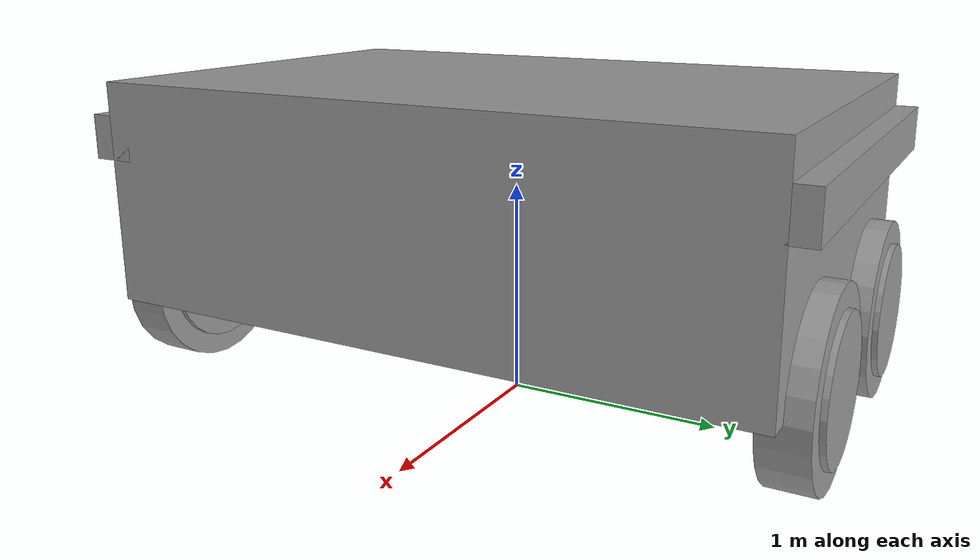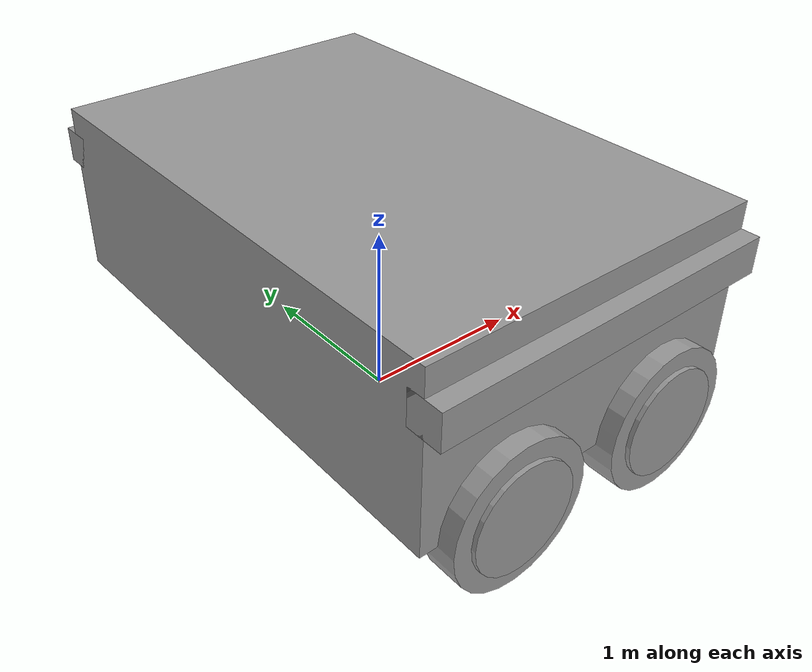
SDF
<?xml version='1.0'?>
<sdf version='1.6'>
  <model name='unit_box'>
    <link name='link'>
      <inertial>
        <mass>1</mass>
        <inertia>
          <ixx>0.166667</ixx>
          <ixy>0</ixy>
          <ixz>0</ixz>
          <iyy>0.166667</iyy>
          <iyz>0</iyz>
          <izz>0.166667</izz>
        </inertia>
        <pose frame=''>0 0 0 0 -0 0</pose>
      </inertial>
      <self_collide>0</self_collide>
      <enable_wind>0</enable_wind>
      <kinematic>0</kinematic>
      <pose frame=''>0 0 1 0 -0 0</pose>
      <gravity>1</gravity>
      <visual name='visual'>
        <geometry>
          <box>
            <size>2 3 1</size>
          </box>
        </geometry>
        <material>
          <script>
            <name>Gazebo/Grey</name>
            <uri>file://media/materials/scripts/gazebo.material</uri>
          </script>
          <shader type='pixel'>
            <normal_map>__default__</normal_map>
          </shader>
          <ambient>0.3 0.3 0.3 1</ambient>
          <diffuse>0.7 0.7 0.7 1</diffuse>
          <specular>0.01 0.01 0.01 1</specular>
          <emissive>0 0 0 1</emissive>
        </material>
        <pose frame=''>0 0 0 0 -0 0</pose>
        <transparency>0</transparency>
        <cast_shadows>1</cast_shadows>
      </visual>
      <collision name='collision'>
        <laser_retro>0</laser_retro>
        <max_contacts>10</max_contacts>
        <pose frame=''>0 0 0 0 -0 0</pose>
        <geometry>
          <box>
            <size>2 3 1</size>
          </box>
        </geometry>
        <surface>
          <friction>
            <ode>
              <mu>1</mu>
              <mu2>1</mu2>
              <fdir1>0 0 0</fdir1>
              <slip1>0</slip1>
              <slip2>0</slip2>
            </ode>
            <torsional>
              <coefficient>1</coefficient>
              <patch_radius>0</patch_radius>
              <surface_radius>0</surface_radius>
              <use_patch_radius>1</use_patch_radius>
              <ode>
                <slip>0</slip>
              </ode>
            </torsional>
          </friction>
          <bounce>
            <restitution_coefficient>0</restitution_coefficient>
            <threshold>1e+06</threshold>
          </bounce>
          <contact>
            <collide_without_contact>0</collide_without_contact>
            <collide_without_contact_bitmask>1</collide_without_contact_bitmask>
            <collide_bitmask>1</collide_bitmask>
            <ode>
              <soft_cfm>0</soft_cfm>
              <soft_erp>0.2</soft_erp>
              <kp>1e+13</kp>
              <kd>1</kd>
              <max_vel>0.01</max_vel>
              <min_depth>0</min_depth>
            </ode>
            <bullet>
              <split_impulse>1</split_impulse>
              <split_impulse_penetration_threshold>-0.01</split_impulse_penetration_threshold>
              <soft_cfm>0</soft_cfm>
              <soft_erp>0.2</soft_erp>
              <kp>1e+13</kp>
              <kd>1</kd>
            </bullet>
          </contact>
        </surface>
      </collision>
    </link>
    <link name='link_0'>
      <inertial>
        <mass>1</mass>
        <inertia>
          <ixx>0.166667</ixx>
          <ixy>0</ixy>
          <ixz>0</ixz>
          <iyy>0.166667</iyy>
          <iyz>0</iyz>
          <izz>0.166667</izz>
        </inertia>
        <pose frame=''>0 0 0 0 -0 0</pose>
      </inertial>
      <pose frame=''>0 1.5 1.25 0 -0 0</pose>
      <gravity>1</gravity>
      <self_collide>0</self_collide>
      <kinematic>0</kinematic>
      <enable_wind>0</enable_wind>
      <visual name='visual'>
        <pose frame=''>0 0 0 0 -0 0</pose>
        <geometry>
          <box>
            <size>2 0.2 0.2</size>
          </box>
        </geometry>
        <material>
          <lighting>1</lighting>
          <script>
            <uri>file://media/materials/scripts/gazebo.material</uri>
            <name>Gazebo/Grey</name>
          </script>
          <shader type='pixel'>
            <normal_map>__default__</normal_map>
          </shader>
          <ambient>0.3 0.3 0.3 1</ambient>
          <diffuse>0.7 0.7 0.7 1</diffuse>
          <specular>0.01 0.01 0.01 1</specular>
          <emissive>0 0 0 1</emissive>
        </material>
        <transparency>0</transparency>
        <cast_shadows>1</cast_shadows>
      </visual>
      <collision name='collision'>
        <laser_retro>0</laser_retro>
        <max_contacts>10</max_contacts>
        <pose frame=''>0 0 0 0 -0 0</pose>
        <geometry>
          <box>
            <size>2 0.2 0.2</size>
          </box>
        </geometry>
        <surface>
          <friction>
            <ode>
              <mu>1</mu>
              <mu2>1</mu2>
              <fdir1>0 0 0</fdir1>
              <slip1>0</slip1>
              <slip2>0</slip2>
            </ode>
            <torsional>
              <coefficient>1</coefficient>
              <patch_radius>0</patch_radius>
              <surface_radius>0</surface_radius>
              <use_patch_radius>1</use_patch_radius>
              <ode>
                <slip>0</slip>
              </ode>
            </torsional>
          </friction>
          <bounce>
            <restitution_coefficient>0</restitution_coefficient>
            <threshold>1e+06</threshold>
          </bounce>
          <contact>
            <collide_without_contact>0</collide_without_contact>
            <collide_without_contact_bitmask>1</collide_without_contact_bitmask>
            <collide_bitmask>1</collide_bitmask>
            <ode>
              <soft_cfm>0</soft_cfm>
              <soft_erp>0.2</soft_erp>
              <kp>1e+13</kp>
              <kd>1</kd>
              <max_vel>0.01</max_vel>
              <min_depth>0</min_depth>
            </ode>
            <bullet>
              <split_impulse>1</split_impulse>
              <split_impulse_penetration_threshold>-0.01</split_impulse_penetration_threshold>
              <soft_cfm>0</soft_cfm>
              <soft_erp>0.2</soft_erp>
              <kp>1e+13</kp>
              <kd>1</kd>
            </bullet>
          </contact>
        </surface>
      </collision>
    </link>
    <link name='link_0_clone'>
      <inertial>
        <mass>1</mass>
        <inertia>
          <ixx>0.166667</ixx>
          <ixy>0</ixy>
          <ixz>0</ixz>
          <iyy>0.166667</iyy>
          <iyz>0</iyz>
          <izz>0.166667</izz>
        </inertia>
        <pose frame=''>0 0 0 0 -0 0</pose>
      </inertial>
      <pose frame=''>-0 -1.5 1.25 -1e-05 -0 0</pose>
      <gravity>1</gravity>
      <self_collide>0</self_collide>
      <kinematic>0</kinematic>
      <enable_wind>0</enable_wind>
      <visual name='visual'>
        <pose frame=''>0 0 0 0 -0 0</pose>
        <geometry>
          <box>
            <size>2 0.2 0.2</size>
          </box>
        </geometry>
        <material>
          <lighting>1</lighting>
          <script>
            <uri>file://media/materials/scripts/gazebo.material</uri>
            <name>Gazebo/Grey</name>
          </script>
          <shader type='pixel'>
            <normal_map>__default__</normal_map>
          </shader>
          <ambient>0.3 0.3 0.3 1</ambient>
          <diffuse>0.7 0.7 0.7 1</diffuse>
          <specular>0.01 0.01 0.01 1</specular>
          <emissive>0 0 0 1</emissive>
        </material>
        <transparency>0</transparency>
        <cast_shadows>1</cast_shadows>
      </visual>
      <collision name='collision'>
        <laser_retro>0</laser_retro>
        <max_contacts>10</max_contacts>
        <pose frame=''>0 0 0 0 -0 0</pose>
        <geometry>
          <box>
            <size>2 0.2 0.2</size>
          </box>
        </geometry>
        <surface>
          <friction>
            <ode>
              <mu>1</mu>
              <mu2>1</mu2>
              <fdir1>0 0 0</fdir1>
              <slip1>0</slip1>
              <slip2>0</slip2>
            </ode>
            <torsional>
              <coefficient>1</coefficient>
              <patch_radius>0</patch_radius>
              <surface_radius>0</surface_radius>
              <use_patch_radius>1</use_patch_radius>
              <ode>
                <slip>0</slip>
              </ode>
            </torsional>
          </friction>
          <bounce>
            <restitution_coefficient>0</restitution_coefficient>
            <threshold>1e+06</threshold>
          </bounce>
          <contact>
            <collide_without_contact>0</collide_without_contact>
            <collide_without_contact_bitmask>1</collide_without_contact_bitmask>
            <collide_bitmask>1</collide_bitmask>
            <ode>
              <soft_cfm>0</soft_cfm>
              <soft_erp>0.2</soft_erp>
              <kp>1e+13</kp>
              <kd>1</kd>
              <max_vel>0.01</max_vel>
              <min_depth>0</min_depth>
            </ode>
            <bullet>
              <split_impulse>1</split_impulse>
              <split_impulse_penetration_threshold>-0.01</split_impulse_penetration_threshold>
              <soft_cfm>0</soft_cfm>
              <soft_erp>0.2</soft_erp>
              <kp>1e+13</kp>
              <kd>1</kd>
            </bullet>
          </contact>
        </surface>
      </collision>
    </link>
    <link name='link_1'>
      <inertial>
        <mass>1</mass>
        <inertia>
          <ixx>0.145833</ixx>
          <ixy>0</ixy>
          <ixz>0</ixz>
          <iyy>0.145833</iyy>
          <iyz>0</iyz>
          <izz>0.125</izz>
        </inertia>
        <pose frame=''>0 0 0 0 -0 0</pose>
      </inertial>
      <pose frame=''>0.5 -1.5 0.5 1.5708 -0 0</pose>
      <gravity>1</gravity>
      <self_collide>0</self_collide>
      <kinematic>0</kinematic>
      <enable_wind>0</enable_wind>
      <visual name='visual'>
        <pose frame=''>0 0 0 0 -0 0</pose>
        <geometry>
          <cylinder>
            <radius>0.4</radius>
            <length>0.2</length>
          </cylinder>
        </geometry>
        <material>
          <lighting>1</lighting>
          <script>
            <uri>file://media/materials/scripts/gazebo.material</uri>
            <name>Gazebo/Grey</name>
          </script>
          <shader type='pixel'>
            <normal_map>__default__</normal_map>
          </shader>
          <ambient>0.3 0.3 0.3 1</ambient>
          <diffuse>0.7 0.7 0.7 1</diffuse>
          <specular>0.01 0.01 0.01 1</specular>
          <emissive>0 0 0 1</emissive>
        </material>
        <transparency>0</transparency>
        <cast_shadows>1</cast_shadows>
      </visual>
      <collision name='collision'>
        <laser_retro>0</laser_retro>
        <max_contacts>10</max_contacts>
        <pose frame=''>0 0 0 0 -0 0</pose>
        <geometry>
          <cylinder>
            <radius>0.4</radius>
            <length>0.2</length>
          </cylinder>
        </geometry>
        <surface>
          <friction>
            <ode>
              <mu>1</mu>
              <mu2>1</mu2>
              <fdir1>0 0 0</fdir1>
              <slip1>0</slip1>
              <slip2>0</slip2>
            </ode>
            <torsional>
              <coefficient>1</coefficient>
              <patch_radius>0</patch_radius>
              <surface_radius>0</surface_radius>
              <use_patch_radius>1</use_patch_radius>
              <ode>
                <slip>0</slip>
              </ode>
            </torsional>
          </friction>
          <bounce>
            <restitution_coefficient>0</restitution_coefficient>
            <threshold>1e+06</threshold>
          </bounce>
          <contact>
            <collide_without_contact>0</collide_without_contact>
            <collide_without_contact_bitmask>1</collide_without_contact_bitmask>
            <collide_bitmask>1</collide_bitmask>
            <ode>
              <soft_cfm>0</soft_cfm>
              <soft_erp>0.2</soft_erp>
              <kp>1e+13</kp>
              <kd>1</kd>
              <max_vel>0.01</max_vel>
              <min_depth>0</min_depth>
            </ode>
            <bullet>
              <split_impulse>1</split_impulse>
              <split_impulse_penetration_threshold>-0.01</split_impulse_penetration_threshold>
              <soft_cfm>0</soft_cfm>
              <soft_erp>0.2</soft_erp>
              <kp>1e+13</kp>
              <kd>1</kd>
            </bullet>
          </contact>
        </surface>
      </collision>
    </link>
    <link name='link_1_clone'>
      <inertial>
        <mass>1</mass>
        <inertia>
          <ixx>0.145833</ixx>
          <ixy>0</ixy>
          <ixz>0</ixz>
          <iyy>0.145833</iyy>
          <iyz>0</iyz>
          <izz>0.125</izz>
        </inertia>
        <pose frame=''>0 0 0 0 -0 0</pose>
      </inertial>
      <pose frame=''>0.5 1.5 0.5 1.57079 -0 0</pose>
      <gravity>1</gravity>
      <self_collide>0</self_collide>
      <kinematic>0</kinematic>
      <enable_wind>0</enable_wind>
      <visual name='visual'>
        <pose frame=''>0 0 0 0 -0 0</pose>
        <geometry>
          <cylinder>
            <radius>0.4</radius>
            <length>0.2</length>
          </cylinder>
        </geometry>
        <material>
          <lighting>1</lighting>
          <script>
            <uri>file://media/materials/scripts/gazebo.material</uri>
            <name>Gazebo/Grey</name>
          </script>
          <shader type='pixel'>
            <normal_map>__default__</normal_map>
          </shader>
          <ambient>0.3 0.3 0.3 1</ambient>
          <diffuse>0.7 0.7 0.7 1</diffuse>
          <specular>0.01 0.01 0.01 1</specular>
          <emissive>0 0 0 1</emissive>
        </material>
        <transparency>0</transparency>
        <cast_shadows>1</cast_shadows>
      </visual>
      <collision name='collision'>
        <laser_retro>0</laser_retro>
        <max_contacts>10</max_contacts>
        <pose frame=''>0 0 0 0 -0 0</pose>
        <geometry>
          <cylinder>
            <radius>0.4</radius>
            <length>0.2</length>
          </cylinder>
        </geometry>
        <surface>
          <friction>
            <ode>
              <mu>1</mu>
              <mu2>1</mu2>
              <fdir1>0 0 0</fdir1>
              <slip1>0</slip1>
              <slip2>0</slip2>
            </ode>
            <torsional>
              <coefficient>1</coefficient>
              <patch_radius>0</patch_radius>
              <surface_radius>0</surface_radius>
              <use_patch_radius>1</use_patch_radius>
              <ode>
                <slip>0</slip>
              </ode>
            </torsional>
          </friction>
          <bounce>
            <restitution_coefficient>0</restitution_coefficient>
            <threshold>1e+06</threshold>
          </bounce>
          <contact>
            <collide_without_contact>0</collide_without_contact>
            <collide_without_contact_bitmask>1</collide_without_contact_bitmask>
            <collide_bitmask>1</collide_bitmask>
            <ode>
              <soft_cfm>0</soft_cfm>
              <soft_erp>0.2</soft_erp>
              <kp>1e+13</kp>
              <kd>1</kd>
              <max_vel>0.01</max_vel>
              <min_depth>0</min_depth>
            </ode>
            <bullet>
              <split_impulse>1</split_impulse>
              <split_impulse_penetration_threshold>-0.01</split_impulse_penetration_threshold>
              <soft_cfm>0</soft_cfm>
              <soft_erp>0.2</soft_erp>
              <kp>1e+13</kp>
              <kd>1</kd>
            </bullet>
          </contact>
        </surface>
      </collision>
    </link>
    <link name='link_1_clone_0'>
      <inertial>
        <mass>1</mass>
        <inertia>
          <ixx>0.145833</ixx>
          <ixy>0</ixy>
          <ixz>0</ixz>
          <iyy>0.145833</iyy>
          <iyz>0</iyz>
          <izz>0.125</izz>
        </inertia>
        <pose frame=''>0 0 0 0 -0 0</pose>
      </inertial>
      <pose frame=''>-0.5 -1.5 0.5 1.5708 -0 0</pose>
      <gravity>1</gravity>
      <self_collide>0</self_collide>
      <kinematic>0</kinematic>
      <enable_wind>0</enable_wind>
      <visual name='visual'>
        <pose frame=''>0 0 0 0 -0 0</pose>
        <geometry>
          <cylinder>
            <radius>0.4</radius>
            <length>0.2</length>
          </cylinder>
        </geometry>
        <material>
          <lighting>1</lighting>
          <script>
            <uri>file://media/materials/scripts/gazebo.material</uri>
            <name>Gazebo/Grey</name>
          </script>
          <shader type='pixel'>
            <normal_map>__default__</normal_map>
          </shader>
          <ambient>0.3 0.3 0.3 1</ambient>
          <diffuse>0.7 0.7 0.7 1</diffuse>
          <specular>0.01 0.01 0.01 1</specular>
          <emissive>0 0 0 1</emissive>
        </material>
        <transparency>0</transparency>
        <cast_shadows>1</cast_shadows>
      </visual>
      <collision name='collision'>
        <laser_retro>0</laser_retro>
        <max_contacts>10</max_contacts>
        <pose frame=''>0 0 0 0 -0 0</pose>
        <geometry>
          <cylinder>
            <radius>0.4</radius>
            <length>0.2</length>
          </cylinder>
        </geometry>
        <surface>
          <friction>
            <ode>
              <mu>1</mu>
              <mu2>1</mu2>
              <fdir1>0 0 0</fdir1>
              <slip1>0</slip1>
              <slip2>0</slip2>
            </ode>
            <torsional>
              <coefficient>1</coefficient>
              <patch_radius>0</patch_radius>
              <surface_radius>0</surface_radius>
              <use_patch_radius>1</use_patch_radius>
              <ode>
                <slip>0</slip>
              </ode>
            </torsional>
          </friction>
          <bounce>
            <restitution_coefficient>0</restitution_coefficient>
            <threshold>1e+06</threshold>
          </bounce>
          <contact>
            <collide_without_contact>0</collide_without_contact>
            <collide_without_contact_bitmask>1</collide_without_contact_bitmask>
            <collide_bitmask>1</collide_bitmask>
            <ode>
              <soft_cfm>0</soft_cfm>
              <soft_erp>0.2</soft_erp>
              <kp>1e+13</kp>
              <kd>1</kd>
              <max_vel>0.01</max_vel>
              <min_depth>0</min_depth>
            </ode>
            <bullet>
              <split_impulse>1</split_impulse>
              <split_impulse_penetration_threshold>-0.01</split_impulse_penetration_threshold>
              <soft_cfm>0</soft_cfm>
              <soft_erp>0.2</soft_erp>
              <kp>1e+13</kp>
              <kd>1</kd>
            </bullet>
          </contact>
        </surface>
      </collision>
    </link>
    <link name='link_1_clone_0_clone'>
      <inertial>
        <mass>1</mass>
        <inertia>
          <ixx>0.145833</ixx>
          <ixy>0</ixy>
          <ixz>0</ixz>
          <iyy>0.145833</iyy>
          <iyz>0</iyz>
          <izz>0.125</izz>
        </inertia>
        <pose frame=''>0 0 0 0 -0 0</pose>
      </inertial>
      <pose frame=''>-0.5 -1.5 0.5 1.57079 -0 0</pose>
      <gravity>1</gravity>
      <self_collide>0</self_collide>
      <kinematic>0</kinematic>
      <enable_wind>0</enable_wind>
      <visual name='visual'>
        <pose frame=''>0 0 0 0 -0 0</pose>
        <geometry>
          <cylinder>
            <radius>0.3</radius>
            <length>0.25</length>
          </cylinder>
        </geometry>
        <material>
          <lighting>1</lighting>
          <script>
            <uri>file://media/materials/scripts/gazebo.material</uri>
            <name>Gazebo/Grey</name>
          </script>
          <shader type='pixel'>
            <normal_map>__default__</normal_map>
          </shader>
          <ambient>0.3 0.3 0.3 1</ambient>
          <diffuse>0.7 0.7 0.7 1</diffuse>
          <specular>0.01 0.01 0.01 1</specular>
          <emissive>0 0 0 1</emissive>
        </material>
        <transparency>0</transparency>
        <cast_shadows>1</cast_shadows>
      </visual>
      <collision name='collision'>
        <laser_retro>0</laser_retro>
        <max_contacts>10</max_contacts>
        <pose frame=''>0 0 0 0 -0 0</pose>
        <geometry>
          <cylinder>
            <radius>0.3</radius>
            <length>0.25</length>
          </cylinder>
        </geometry>
        <surface>
          <friction>
            <ode>
              <mu>1</mu>
              <mu2>1</mu2>
              <fdir1>0 0 0</fdir1>
              <slip1>0</slip1>
              <slip2>0</slip2>
            </ode>
            <torsional>
              <coefficient>1</coefficient>
              <patch_radius>0</patch_radius>
              <surface_radius>0</surface_radius>
              <use_patch_radius>1</use_patch_radius>
              <ode>
                <slip>0</slip>
              </ode>
            </torsional>
          </friction>
          <bounce>
            <restitution_coefficient>0</restitution_coefficient>
            <threshold>1e+06</threshold>
          </bounce>
          <contact>
            <collide_without_contact>0</collide_without_contact>
            <collide_without_contact_bitmask>1</collide_without_contact_bitmask>
            <collide_bitmask>1</collide_bitmask>
            <ode>
              <soft_cfm>0</soft_cfm>
              <soft_erp>0.2</soft_erp>
              <kp>1e+13</kp>
              <kd>1</kd>
              <max_vel>0.01</max_vel>
              <min_depth>0</min_depth>
            </ode>
            <bullet>
              <split_impulse>1</split_impulse>
              <split_impulse_penetration_threshold>-0.01</split_impulse_penetration_threshold>
              <soft_cfm>0</soft_cfm>
              <soft_erp>0.2</soft_erp>
              <kp>1e+13</kp>
              <kd>1</kd>
            </bullet>
          </contact>
        </surface>
      </collision>
    </link>
    <link name='link_1_clone_1'>
      <inertial>
        <mass>1</mass>
        <inertia>
          <ixx>0.145833</ixx>
          <ixy>0</ixy>
          <ixz>0</ixz>
          <iyy>0.145833</iyy>
          <iyz>0</iyz>
          <izz>0.125</izz>
        </inertia>
        <pose frame=''>0 0 0 0 -0 0</pose>
      </inertial>
      <pose frame=''>-0.5 1.5 0.5 1.57079 -0 0</pose>
      <gravity>1</gravity>
      <self_collide>0</self_collide>
      <kinematic>0</kinematic>
      <enable_wind>0</enable_wind>
      <visual name='visual'>
        <pose frame=''>0 0 0 0 -0 0</pose>
        <geometry>
          <cylinder>
            <radius>0.4</radius>
            <length>0.2</length>
          </cylinder>
        </geometry>
        <material>
          <lighting>1</lighting>
          <script>
            <uri>file://media/materials/scripts/gazebo.material</uri>
            <name>Gazebo/Grey</name>
          </script>
          <shader type='pixel'>
            <normal_map>__default__</normal_map>
          </shader>
          <ambient>0.3 0.3 0.3 1</ambient>
          <diffuse>0.7 0.7 0.7 1</diffuse>
          <specular>0.01 0.01 0.01 1</specular>
          <emissive>0 0 0 1</emissive>
        </material>
        <transparency>0</transparency>
        <cast_shadows>1</cast_shadows>
      </visual>
      <collision name='collision'>
        <laser_retro>0</laser_retro>
        <max_contacts>10</max_contacts>
        <pose frame=''>0 0 0 0 -0 0</pose>
        <geometry>
          <cylinder>
            <radius>0.4</radius>
            <length>0.2</length>
          </cylinder>
        </geometry>
        <surface>
          <friction>
            <ode>
              <mu>1</mu>
              <mu2>1</mu2>
              <fdir1>0 0 0</fdir1>
              <slip1>0</slip1>
              <slip2>0</slip2>
            </ode>
            <torsional>
              <coefficient>1</coefficient>
              <patch_radius>0</patch_radius>
              <surface_radius>0</surface_radius>
              <use_patch_radius>1</use_patch_radius>
              <ode>
                <slip>0</slip>
              </ode>
            </torsional>
          </friction>
          <bounce>
            <restitution_coefficient>0</restitution_coefficient>
            <threshold>1e+06</threshold>
          </bounce>
          <contact>
            <collide_without_contact>0</collide_without_contact>
            <collide_without_contact_bitmask>1</collide_without_contact_bitmask>
            <collide_bitmask>1</collide_bitmask>
            <ode>
              <soft_cfm>0</soft_cfm>
              <soft_erp>0.2</soft_erp>
              <kp>1e+13</kp>
              <kd>1</kd>
              <max_vel>0.01</max_vel>
              <min_depth>0</min_depth>
            </ode>
            <bullet>
              <split_impulse>1</split_impulse>
              <split_impulse_penetration_threshold>-0.01</split_impulse_penetration_threshold>
              <soft_cfm>0</soft_cfm>
              <soft_erp>0.2</soft_erp>
              <kp>1e+13</kp>
              <kd>1</kd>
            </bullet>
          </contact>
        </surface>
      </collision>
    </link>
    <link name='link_1_clone_1_clone'>
      <inertial>
        <mass>1</mass>
        <inertia>
          <ixx>0.145833</ixx>
          <ixy>0</ixy>
          <ixz>0</ixz>
          <iyy>0.145833</iyy>
          <iyz>0</iyz>
          <izz>0.125</izz>
        </inertia>
        <pose frame=''>0 0 0 0 -0 0</pose>
      </inertial>
      <pose frame=''>-0.5 1.5 0.5 1.57078 -0 0</pose>
      <gravity>1</gravity>
      <self_collide>0</self_collide>
      <kinematic>0</kinematic>
      <enable_wind>0</enable_wind>
      <visual name='visual'>
        <pose frame=''>0 0 0 0 -0 0</pose>
        <geometry>
          <cylinder>
            <radius>0.3</radius>
            <length>0.25</length>
          </cylinder>
        </geometry>
        <material>
          <lighting>1</lighting>
          <script>
            <uri>file://media/materials/scripts/gazebo.material</uri>
            <name>Gazebo/Grey</name>
          </script>
          <shader type='pixel'>
            <normal_map>__default__</normal_map>
          </shader>
          <ambient>0.3 0.3 0.3 1</ambient>
          <diffuse>0.7 0.7 0.7 1</diffuse>
          <specular>0.01 0.01 0.01 1</specular>
          <emissive>0 0 0 1</emissive>
        </material>
        <transparency>0</transparency>
        <cast_shadows>1</cast_shadows>
      </visual>
      <collision name='collision'>
        <laser_retro>0</laser_retro>
        <max_contacts>10</max_contacts>
        <pose frame=''>0 0 0 0 -0 0</pose>
        <geometry>
          <cylinder>
            <radius>0.3</radius>
            <length>0.25</length>
          </cylinder>
        </geometry>
        <surface>
          <friction>
            <ode>
              <mu>1</mu>
              <mu2>1</mu2>
              <fdir1>0 0 0</fdir1>
              <slip1>0</slip1>
              <slip2>0</slip2>
            </ode>
            <torsional>
              <coefficient>1</coefficient>
              <patch_radius>0</patch_radius>
              <surface_radius>0</surface_radius>
              <use_patch_radius>1</use_patch_radius>
              <ode>
                <slip>0</slip>
              </ode>
            </torsional>
          </friction>
          <bounce>
            <restitution_coefficient>0</restitution_coefficient>
            <threshold>1e+06</threshold>
          </bounce>
          <contact>
            <collide_without_contact>0</collide_without_contact>
            <collide_without_contact_bitmask>1</collide_without_contact_bitmask>
            <collide_bitmask>1</collide_bitmask>
            <ode>
              <soft_cfm>0</soft_cfm>
              <soft_erp>0.2</soft_erp>
              <kp>1e+13</kp>
              <kd>1</kd>
              <max_vel>0.01</max_vel>
              <min_depth>0</min_depth>
            </ode>
            <bullet>
              <split_impulse>1</split_impulse>
              <split_impulse_penetration_threshold>-0.01</split_impulse_penetration_threshold>
              <soft_cfm>0</soft_cfm>
              <soft_erp>0.2</soft_erp>
              <kp>1e+13</kp>
              <kd>1</kd>
            </bullet>
          </contact>
        </surface>
      </collision>
    </link>
    <link name='link_1_clone_2'>
      <inertial>
        <mass>1</mass>
        <inertia>
          <ixx>0.145833</ixx>
          <ixy>0</ixy>
          <ixz>0</ixz>
          <iyy>0.145833</iyy>
          <iyz>0</iyz>
          <izz>0.125</izz>
        </inertia>
        <pose frame=''>0 0 0 0 -0 0</pose>
      </inertial>
      <pose frame=''>0.5 -1.5 0.5 1.57079 -0 0</pose>
      <gravity>1</gravity>
      <self_collide>0</self_collide>
      <kinematic>0</kinematic>
      <enable_wind>0</enable_wind>
      <visual name='visual'>
        <pose frame=''>0 0 0 0 -0 0</pose>
        <geometry>
          <cylinder>
            <radius>0.3</radius>
            <length>0.25</length>
          </cylinder>
        </geometry>
        <material>
          <lighting>1</lighting>
          <script>
            <uri>file://media/materials/scripts/gazebo.material</uri>
            <name>Gazebo/Grey</name>
          </script>
          <shader type='pixel'>
            <normal_map>__default__</normal_map>
          </shader>
          <ambient>0.3 0.3 0.3 1</ambient>
          <diffuse>0.7 0.7 0.7 1</diffuse>
          <specular>0.01 0.01 0.01 1</specular>
          <emissive>0 0 0 1</emissive>
        </material>
        <transparency>0</transparency>
        <cast_shadows>1</cast_shadows>
      </visual>
      <collision name='collision'>
        <laser_retro>0</laser_retro>
        <max_contacts>10</max_contacts>
        <pose frame=''>0 0 0 0 -0 0</pose>
        <geometry>
          <cylinder>
            <radius>0.3</radius>
            <length>0.25</length>
          </cylinder>
        </geometry>
        <surface>
          <friction>
            <ode>
              <mu>1</mu>
              <mu2>1</mu2>
              <fdir1>0 0 0</fdir1>
              <slip1>0</slip1>
              <slip2>0</slip2>
            </ode>
            <torsional>
              <coefficient>1</coefficient>
              <patch_radius>0</patch_radius>
              <surface_radius>0</surface_radius>
              <use_patch_radius>1</use_patch_radius>
              <ode>
                <slip>0</slip>
              </ode>
            </torsional>
          </friction>
          <bounce>
            <restitution_coefficient>0</restitution_coefficient>
            <threshold>1e+06</threshold>
          </bounce>
          <contact>
            <collide_without_contact>0</collide_without_contact>
            <collide_without_contact_bitmask>1</collide_without_contact_bitmask>
            <collide_bitmask>1</collide_bitmask>
            <ode>
              <soft_cfm>0</soft_cfm>
              <soft_erp>0.2</soft_erp>
              <kp>1e+13</kp>
              <kd>1</kd>
              <max_vel>0.01</max_vel>
              <min_depth>0</min_depth>
            </ode>
            <bullet>
              <split_impulse>1</split_impulse>
              <split_impulse_penetration_threshold>-0.01</split_impulse_penetration_threshold>
              <soft_cfm>0</soft_cfm>
              <soft_erp>0.2</soft_erp>
              <kp>1e+13</kp>
              <kd>1</kd>
            </bullet>
          </contact>
        </surface>
      </collision>
    </link>
    <link name='link_1_clone_clone'>
      <inertial>
        <mass>1</mass>
        <inertia>
          <ixx>0.145833</ixx>
          <ixy>0</ixy>
          <ixz>0</ixz>
          <iyy>0.145833</iyy>
          <iyz>0</iyz>
          <izz>0.125</izz>
        </inertia>
        <pose frame=''>0 0 0 0 -0 0</pose>
      </inertial>
      <pose frame=''>0.5 1.5 0.5 1.57078 -0 0</pose>
      <gravity>1</gravity>
      <self_collide>0</self_collide>
      <kinematic>0</kinematic>
      <enable_wind>0</enable_wind>
      <visual name='visual'>
        <pose frame=''>0 0 0 0 -0 0</pose>
        <geometry>
          <cylinder>
            <radius>0.3</radius>
            <length>0.25</length>
          </cylinder>
        </geometry>
        <material>
          <lighting>1</lighting>
          <script>
            <uri>file://media/materials/scripts/gazebo.material</uri>
            <name>Gazebo/Grey</name>
          </script>
          <shader type='pixel'>
            <normal_map>__default__</normal_map>
          </shader>
          <ambient>0.3 0.3 0.3 1</ambient>
          <diffuse>0.7 0.7 0.7 1</diffuse>
          <specular>0.01 0.01 0.01 1</specular>
          <emissive>0 0 0 1</emissive>
        </material>
        <transparency>0</transparency>
        <cast_shadows>1</cast_shadows>
      </visual>
      <collision name='collision'>
        <laser_retro>0</laser_retro>
        <max_contacts>10</max_contacts>
        <pose frame=''>0 0 0 0 -0 0</pose>
        <geometry>
          <cylinder>
            <radius>0.3</radius>
            <length>0.25</length>
          </cylinder>
        </geometry>
        <surface>
          <friction>
            <ode>
              <mu>1</mu>
              <mu2>1</mu2>
              <fdir1>0 0 0</fdir1>
              <slip1>0</slip1>
              <slip2>0</slip2>
            </ode>
            <torsional>
              <coefficient>1</coefficient>
              <patch_radius>0</patch_radius>
              <surface_radius>0</surface_radius>
              <use_patch_radius>1</use_patch_radius>
              <ode>
                <slip>0</slip>
              </ode>
            </torsional>
          </friction>
          <bounce>
            <restitution_coefficient>0</restitution_coefficient>
            <threshold>1e+06</threshold>
          </bounce>
          <contact>
            <collide_without_contact>0</collide_without_contact>
            <collide_without_contact_bitmask>1</collide_without_contact_bitmask>
            <collide_bitmask>1</collide_bitmask>
            <ode>
              <soft_cfm>0</soft_cfm>
              <soft_erp>0.2</soft_erp>
              <kp>1e+13</kp>
              <kd>1</kd>
              <max_vel>0.01</max_vel>
              <min_depth>0</min_depth>
            </ode>
            <bullet>
              <split_impulse>1</split_impulse>
              <split_impulse_penetration_threshold>-0.01</split_impulse_penetration_threshold>
              <soft_cfm>0</soft_cfm>
              <soft_erp>0.2</soft_erp>
              <kp>1e+13</kp>
              <kd>1</kd>
            </bullet>
          </contact>
        </surface>
      </collision>
    </link>
    <joint name='link_1_clone_0_clone_JOINT_4' type='revolute'>
      <parent>link_1_clone_0_clone</parent>
      <child>link_1_clone_0</child>
      <pose frame=''>0 0 0 0 -0 0</pose>
      <axis>
        <xyz>0 0 -1</xyz>
        <use_parent_model_frame>0</use_parent_model_frame>
        <limit>
          <lower>-1.79769e+308</lower>
          <upper>1.79769e+308</upper>
          <effort>-1</effort>
          <velocity>-1</velocity>
        </limit>
        <dynamics>
          <spring_reference>0</spring_reference>
          <spring_stiffness>0</spring_stiffness>
          <damping>0</damping>
          <friction>0</friction>
        </dynamics>
      </axis>
      <physics>
        <ode>
          <limit>
            <cfm>0</cfm>
            <erp>0.2</erp>
          </limit>
          <suspension>
            <cfm>0</cfm>
            <erp>0.2</erp>
          </suspension>
        </ode>
      </physics>
    </joint>
    <joint name='link_1_clone_1_clone_JOINT_10' type='revolute'>
      <parent>link_1_clone_1_clone</parent>
      <child>link_1_clone_1</child>
      <pose frame=''>0 0 0 0 -0 0</pose>
      <axis>
        <xyz>0 0 1</xyz>
        <use_parent_model_frame>0</use_parent_model_frame>
        <limit>
          <lower>-1.79769e+308</lower>
          <upper>1.79769e+308</upper>
          <effort>-1</effort>
          <velocity>-1</velocity>
        </limit>
        <dynamics>
          <spring_reference>0</spring_reference>
          <spring_stiffness>0</spring_stiffness>
          <damping>0</damping>
          <friction>0</friction>
        </dynamics>
      </axis>
      <physics>
        <ode>
          <limit>
            <cfm>0</cfm>
            <erp>0.2</erp>
          </limit>
          <suspension>
            <cfm>0</cfm>
            <erp>0.2</erp>
          </suspension>
        </ode>
      </physics>
    </joint>
    <joint name='link_1_clone_2_JOINT_6' type='revolute'>
      <parent>link_1_clone_2</parent>
      <child>link_1</child>
      <pose frame=''>0 0 0 0 -0 0</pose>
      <axis>
        <xyz>0 0 -1</xyz>
        <use_parent_model_frame>0</use_parent_model_frame>
        <limit>
          <lower>-1.79769e+308</lower>
          <upper>1.79769e+308</upper>
          <effort>-1</effort>
          <velocity>-1</velocity>
        </limit>
        <dynamics>
          <spring_reference>0</spring_reference>
          <spring_stiffness>0</spring_stiffness>
          <damping>0</damping>
          <friction>0</friction>
        </dynamics>
      </axis>
      <physics>
        <ode>
          <limit>
            <cfm>0</cfm>
            <erp>0.2</erp>
          </limit>
          <suspension>
            <cfm>0</cfm>
            <erp>0.2</erp>
          </suspension>
        </ode>
      </physics>
    </joint>
    <joint name='link_1_clone_clone_JOINT_8' type='revolute'>
      <parent>link_1_clone_clone</parent>
      <child>link_1_clone</child>
      <pose frame=''>0 0 0 0 -0 0</pose>
      <axis>
        <xyz>0 0 1</xyz>
        <use_parent_model_frame>0</use_parent_model_frame>
        <limit>
          <lower>-1.79769e+308</lower>
          <upper>1.79769e+308</upper>
          <effort>-1</effort>
          <velocity>-1</velocity>
        </limit>
        <dynamics>
          <spring_reference>0</spring_reference>
          <spring_stiffness>0</spring_stiffness>
          <damping>0</damping>
          <friction>0</friction>
        </dynamics>
      </axis>
      <physics>
        <ode>
          <limit>
            <cfm>0</cfm>
            <erp>0.2</erp>
          </limit>
          <suspension>
            <cfm>0</cfm>
            <erp>0.2</erp>
          </suspension>
        </ode>
      </physics>
    </joint>
    <joint name='link_JOINT_1' type='revolute'>
      <parent>link</parent>
      <child>link_0_clone</child>
      <pose frame=''>-1 0 0 0 -0 0</pose>
      <axis>
        <xyz>0 0 1</xyz>
        <use_parent_model_frame>0</use_parent_model_frame>
        <limit>
          <lower>-1.79769e+308</lower>
          <upper>1.79769e+308</upper>
          <effort>-1</effort>
          <velocity>-1</velocity>
        </limit>
        <dynamics>
          <spring_reference>0</spring_reference>
          <spring_stiffness>0</spring_stiffness>
          <damping>0</damping>
          <friction>0</friction>
        </dynamics>
      </axis>
      <physics>
        <ode>
          <limit>
            <cfm>0</cfm>
            <erp>0.2</erp>
          </limit>
          <suspension>
            <cfm>0</cfm>
            <erp>0.2</erp>
          </suspension>
        </ode>
      </physics>
    </joint>
    <joint name='link_JOINT_2' type='revolute'>
      <parent>link</parent>
      <child>link_0</child>
      <pose frame=''>-1 0 0 0 -0 0</pose>
      <axis>
        <xyz>-0 -0 -1</xyz>
        <use_parent_model_frame>0</use_parent_model_frame>
        <limit>
          <lower>-1.79769e+308</lower>
          <upper>1.79769e+308</upper>
          <effort>-1</effort>
          <velocity>-1</velocity>
        </limit>
        <dynamics>
          <spring_reference>0</spring_reference>
          <spring_stiffness>0</spring_stiffness>
          <damping>0</damping>
        </dynamics>
      </axis>
      <physics>
        <ode>
          <limit>
            <cfm>0</cfm>
            <erp>0.2</erp>
          </limit>
          <suspension>
            <cfm>0</cfm>
            <erp>0.2</erp>
          </suspension>
        </ode>
      </physics>
    </joint>
    <joint name='link_JOINT_3' type='prismatic'>
      <parent>link</parent>
      <child>link_1_clone_0_clone</child>
      <pose frame=''>0 0 0 0 -0 0</pose>
      <axis>
        <xyz>0 1 0</xyz>
        <use_parent_model_frame>0</use_parent_model_frame>
        <limit>
          <lower>-0.3</lower>
          <upper>0.2</upper>
          <effort>-1</effort>
          <velocity>-1</velocity>
        </limit>
        <dynamics>
          <spring_reference>0</spring_reference>
          <spring_stiffness>0</spring_stiffness>
          <damping>0</damping>
        </dynamics>
      </axis>
      <physics>
        <ode>
          <limit>
            <cfm>0</cfm>
            <erp>0.2</erp>
          </limit>
          <suspension>
            <cfm>0</cfm>
            <erp>0.2</erp>
          </suspension>
        </ode>
      </physics>
    </joint>
    <joint name='link_JOINT_5' type='prismatic'>
      <parent>link</parent>
      <child>link_1_clone_2</child>
      <pose frame=''>0 0 -0.02 0 -0 0</pose>
      <axis>
        <xyz>0 1 0</xyz>
        <use_parent_model_frame>0</use_parent_model_frame>
        <limit>
          <lower>-0.3</lower>
          <upper>0.2</upper>
          <effort>-1</effort>
          <velocity>-1</velocity>
        </limit>
        <dynamics>
          <spring_reference>0</spring_reference>
          <spring_stiffness>0</spring_stiffness>
          <damping>0</damping>
        </dynamics>
      </axis>
      <physics>
        <ode>
          <limit>
            <cfm>0</cfm>
            <erp>0.2</erp>
          </limit>
          <suspension>
            <cfm>0</cfm>
            <erp>0.2</erp>
          </suspension>
        </ode>
      </physics>
    </joint>
    <joint name='link_JOINT_7' type='prismatic'>
      <parent>link</parent>
      <child>link_1_clone_clone</child>
      <pose frame=''>0 0 0 0 -0 0</pose>
      <axis>
        <xyz>0 1 0</xyz>
        <use_parent_model_frame>0</use_parent_model_frame>
        <limit>
          <lower>-0.3</lower>
          <upper>0.2</upper>
          <effort>-1</effort>
          <velocity>-1</velocity>
        </limit>
        <dynamics>
          <spring_reference>0</spring_reference>
          <spring_stiffness>0</spring_stiffness>
          <damping>0</damping>
        </dynamics>
      </axis>
      <physics>
        <ode>
          <limit>
            <cfm>0</cfm>
            <erp>0.2</erp>
          </limit>
          <suspension>
            <cfm>0</cfm>
            <erp>0.2</erp>
          </suspension>
        </ode>
      </physics>
    </joint>
    <joint name='link_JOINT_9' type='prismatic'>
      <parent>link</parent>
      <child>link_1_clone_1_clone</child>
      <pose frame=''>0 0 0 0 -0 0</pose>
      <axis>
        <xyz>0 1 0</xyz>
        <use_parent_model_frame>0</use_parent_model_frame>
        <limit>
          <lower>-0.3</lower>
          <upper>0.2</upper>
          <effort>-1</effort>
          <velocity>-1</velocity>
        </limit>
        <dynamics>
          <spring_reference>0</spring_reference>
          <spring_stiffness>0</spring_stiffness>
          <damping>0</damping>
        </dynamics>
      </axis>
      <physics>
        <ode>
          <limit>
            <cfm>0</cfm>
            <erp>0.2</erp>
          </limit>
          <suspension>
            <cfm>0</cfm>
            <erp>0.2</erp>
          </suspension>
        </ode>
      </physics>
    </joint>
    <static>0</static>
    <allow_auto_disable>1</allow_auto_disable>
  </model>
</sdf>
